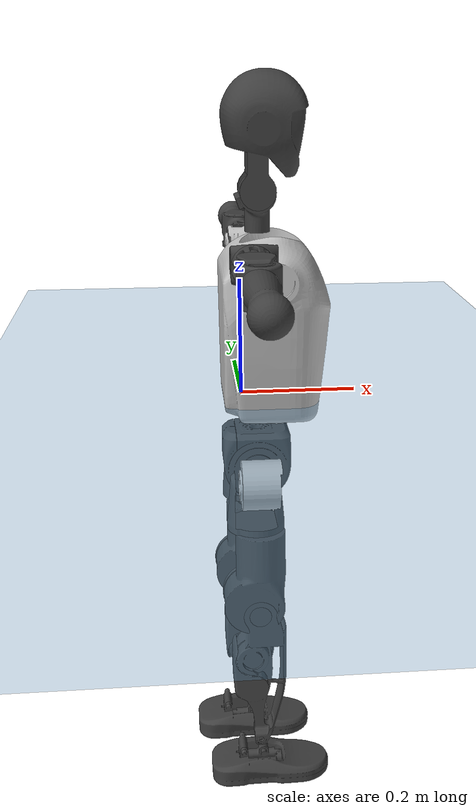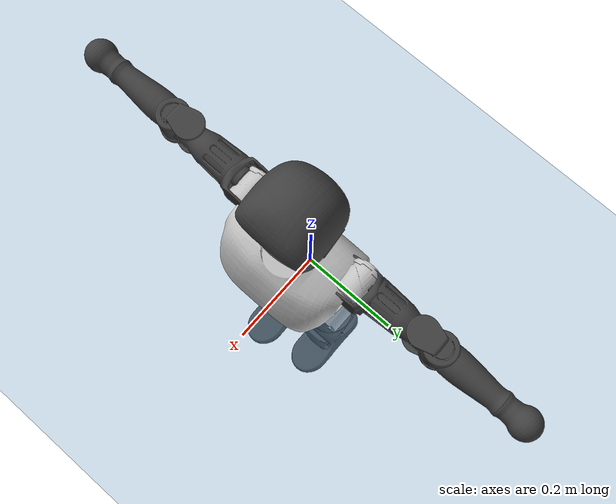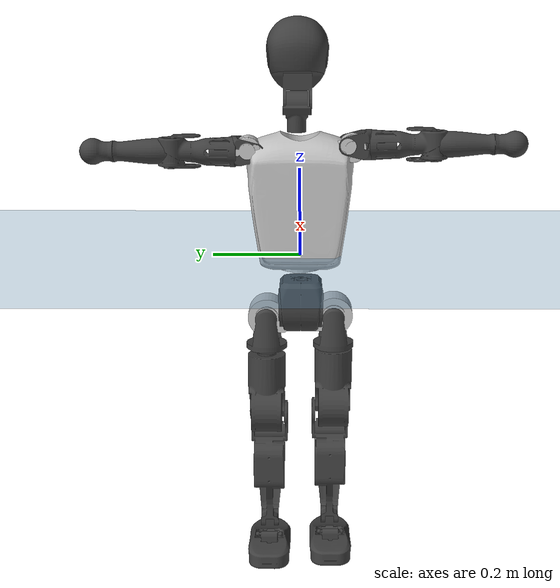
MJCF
<mujoco model="T1">
  <compiler angle="radian" assetdir="assets" balanceinertia="true" inertiafromgeom="false"/>

  <option timestep="0.005" density="1.2" viscosity="2e-05"/>

  <size nkey="1"/>

  <visual>
    <quality shadowsize="8192"/>
    <map shadowclip="0.5"/>
  </visual>

  <default>
    <default class="/">
      <joint armature="0.01" damping="0.01" frictionloss="0.1"/>
      <geom contype="0" conaffinity="0" group="1" solref="-1000 -80"/>
      <site size="0.01 0.005 0.005" group="5"/>
      <general forcelimited="true" biastype="affine" gainprm="25" biasprm="0 -25 -0.6"/>
      <default class="t1">
        <geom rgba="0.25 0.25 0.25 1"/>
        <default class="visual">
          <geom type="mesh" group="2"/>
        </default>
        <default class="collision">
          <geom group="3"/>
        </default>
        <default class="foot">
          <geom size="0.1115 0.05 0.015" type="box" condim="6" group="4" priority="1" solimp="0.015 1 0.015"/>
        </default>
        <default class="reward_collision_sphere">
          <geom group="5" rgba="1 0 0 1"/>
        </default>
      </default>
    </default>
  </default>

  <asset>
    <texture type="skybox" colorspace="auto" name="//unnamed_texture_0" builtin="gradient" rgb1="0.95 0.95 0.95" rgb2="0.95 0.95 0.95" width="100" height="600"/>
    <texture type="2d" colorspace="auto" name="texplane" builtin="checker" rgb1="0.345 0.575 0.748" rgb2="0.345 0.575 0.748" markrgb="1 1 1" width="512" height="512"/>
    <material name="MatPlane" class="/" texture="texplane" texuniform="true" texrepeat="2 2" specular="0.9"/>
    <mesh name="Trunk" class="/" file="Trunk.stl"/>
    <mesh name="H1" class="/" file="H1.stl"/>
    <mesh name="H2" class="/" file="H2.stl"/>
    <mesh name="AL1" class="/" file="AL1.stl"/>
    <mesh name="AL2" class="/" file="AL2.stl"/>
    <mesh name="AL3" class="/" file="AL3.stl"/>
    <mesh name="left_hand_link" class="/" file="left_hand_link.stl"/>
    <mesh name="AR1" class="/" file="AR1.stl"/>
    <mesh name="AR2" class="/" file="AR2.stl"/>
    <mesh name="AR3" class="/" file="AR3.stl"/>
    <mesh name="right_hand_link" class="/" file="right_hand_link.stl"/>
    <mesh name="Waist" class="/" file="Waist.stl"/>
    <mesh name="Hip_Pitch_Left" class="/" file="Hip_Pitch_Left.stl"/>
    <mesh name="Hip_Roll_Left" class="/" file="Hip_Roll_Left.stl"/>
    <mesh name="Hip_Yaw_Left" class="/" file="Hip_Yaw_Left.stl"/>
    <mesh name="Shank_Left" class="/" file="Shank_Left.stl"/>
    <mesh name="Ankle_Cross_Left" class="/" file="Ankle_Cross_Left.stl"/>
    <mesh name="left_foot_link" class="/" file="left_foot_link.stl"/>
    <mesh name="Hip_Pitch_Right" class="/" file="Hip_Pitch_Right.stl"/>
    <mesh name="Hip_Roll_Right" class="/" file="Hip_Roll_Right.stl"/>
    <mesh name="Hip_Yaw_Right" class="/" file="Hip_Yaw_Right.stl"/>
    <mesh name="Shank_Right" class="/" file="Shank_Right.stl"/>
    <mesh name="Ankle_Cross_Right" class="/" file="Ankle_Cross_Right.stl"/>
    <mesh name="right_foot_link" class="/" file="right_foot_link.stl"/>
  </asset>

  <worldbody>
    <geom name="floor" class="/" size="100 100 0.125" type="plane" group="0" material="MatPlane"/>
    <light name="toplight_shadow" class="/" pos="0 0 5" dir="0.0990148 0.0990148 -0.990148" type="directional" ambient="0.04 0.04 0.04" diffuse="0.55 0.55 0.55" specular="0.12 0.12 0.12"/>
    <light name="toplight_fill" class="/" pos="0 0 5" dir="0.0990148 0.0990148 -0.990148" type="directional" castshadow="false" ambient="0.04 0.04 0.04" diffuse="0.3 0.3 0.3" specular="0.08 0.08 0.08"/>
    <body name="trunk" childclass="t1" pos="-0.00344347 9.52587e-05 -0.00140902" quat="1 8.98772e-05 -0.000802102 -8.54818e-05">
      <inertial pos="0.0225256 -0.000807312 0.118898" quat="0.999961 0.000180202 -0.0087983 0.000427987" mass="4.65671" diaginertia="0.0011188 0.0171348 0.0917079"/>
      <joint name="//unnamed_joint_0" type="free" armature="0" damping="0" frictionloss="0"/>
      <geom name="//unnamed_geom_1" class="visual" rgba="0.76 0.76 0.76 1" mesh="Trunk"/>
      <geom name="//unnamed_geom_2" class="collision" size="0.0569319 0.0759092 0.113864" pos="0.0252832 0 0.133632" type="box"/>
      <geom name="//unnamed_geom_3" class="reward_collision_sphere" size="0.0872956" pos="0.0252832 0 0.11136"/>
      <geom name="//unnamed_geom_4" class="reward_collision_sphere" size="0.0113864" pos="0.0252832 0.063095 0"/>
      <geom name="//unnamed_geom_5" class="reward_collision_sphere" size="0.0113864" pos="0.0252832 -0.063095 0"/>
      <geom name="//unnamed_geom_6" class="reward_collision_sphere" size="0.0113864" pos="0.0252832 0.0794255 0.200447"/>
      <geom name="//unnamed_geom_7" class="reward_collision_sphere" size="0.0113864" pos="0.0252832 -0.0794255 0.200447"/>
      <site name="imu" pos="0.0375118 0.00465118 -0.0214871" size="0.00759092"/>
      <camera name="track" pos="0 -1.48459 0" quat="0.707107 0.707107 0 0" mode="trackcom"/>
      <camera name="ego_camera" pos="0.0514091 0 0.467711" quat="-0.5 -0.5 0.5 0.5"/>
      <body name="H1" pos="0.0352264 0.0078591 0.279465" quat="1 -0.000238336 8.04154e-05 0.000211922">
        <inertial pos="0.00231758 -0.00292383 0.0654378" quat="0.776021 -0.00728736 -0.0308379 0.629911" mass="0.178184" diaginertia="3.22345e-06 5.4563e-05 0.000248179"/>
        <joint name="AAHead_yaw" pos="0 0 0" axis="-0.0332013 -0.0128467 0.999366" range="-1.60589 1.57354" armature="0.00542804" damping="0.0039677" frictionloss="0.0674725"/>
        <geom name="//unnamed_geom_8" class="visual" mesh="H1"/>
        <body name="H2" pos="-0.000508461 -0.00175904 0.0683218" quat="0.999997 0.000286147 0.00112303 0.00235317">
          <inertial pos="0.00233987 0.00925919 0.108578" quat="0.989232 0.103233 -0.0746486 -0.0720505" mass="0.255795" diaginertia="2.70309e-05 0.000437114 0.00286047"/>
          <joint name="Head_pitch" pos="0 0 0" axis="-0.00115273 -0.999999 0.00104275" stiffness="0.0101763" range="-1.20778 0.339222" armature="0.00634767" damping="0.0020482" frictionloss="0.0737392"/>
          <geom name="//unnamed_geom_9" class="visual" mesh="H2"/>
          <geom name="//unnamed_geom_10" class="collision" size="0.0607274" pos="0.00421386 0 0.122496"/>
          <geom name="//unnamed_geom_11" class="reward_collision_sphere" size="0.0683183" pos="0.00842772 0 0.11136"/>
        </body>
      </body>
      <body name="AL1" pos="0.0238303 0.072024 0.241079" quat="1 1.77279e-05 0.000101793 -0.000130316">
        <inertial pos="0.00776754 0.0257673 0.00479082" quat="0.501851 0.49955 -0.504346 0.494196" mass="0.220743" diaginertia="1.70538e-05 0.000274889 0.000477794"/>
        <joint name="Left_Shoulder_Pitch" pos="0 0 0" axis="-0.0182716 0.999832 0.00118467" range="-3.33067 1.20892" armature="0.00654084" damping="0" frictionloss="0.0902413"/>
        <geom name="//unnamed_geom_12" class="visual" rgba="0.76 0.76 0.76 1" mesh="AL1"/>
        <body name="AL2" pos="0.00373274 0.0288969 -0.00349355" quat="1 -7.002e-05 0.000237389 -2.7549e-05">
          <inertial pos="0.00233291 0.0270627 -0.00205195" quat="0.487876 0.511412 -0.488371 0.51179" mass="0.0675766" diaginertia="4.54695e-06 6.32658e-05 0.000285435"/>
          <joint name="Left_Shoulder_Roll" pos="0 0 0" axis="-0.999992 -0.00386579 -0.00136696" range="-1.64303 1.86737" armature="0.00728035" damping="0" frictionloss="0.068013"/>
          <geom name="//unnamed_geom_13" class="visual" mesh="AL2"/>
          <body name="AL3" pos="-0.00747188 0.0437608 -0.00114821" quat="0.999999 6.35609e-05 0.00130291 0.000736564">
            <inertial pos="-1.69851e-05 0.0645165 -0.00534909" quat="0.714801 0.698962 -0.0135871 0.0181078" mass="0.440002" diaginertia="0.00016067 0.00288734 0.0010735"/>
            <joint name="Left_Elbow_Pitch" pos="0 0 0" axis="-0.0114209 -0.999934 -0.00156585" range="-2.31526 2.15633" armature="0.00989828" damping="0.010329" frictionloss="0.0699162"/>
            <geom name="//unnamed_geom_14" class="visual" mesh="AL3"/>
            <geom name="//unnamed_geom_15" class="collision" size="0.0227728 0.0569319" pos="0 0.0371147 0" quat="0.707105 0.707108 0 0" type="cylinder"/>
            <geom name="//unnamed_geom_16" class="reward_collision_sphere" size="0.0273273"/>
            <body name="left_hand_link" pos="-0.000139117 0.108668 0.00126926" quat="0.999997 -0.0019193 0.0012894 -0.000241148">
              <inertial pos="-0.00925191 0.0870807 -0.00129948" quat="0.707657 0.706555 0.0012027 -0.000518246" mass="0.145559" diaginertia="0.000102951 0.00178146 0.000389398"/>
              <joint name="Left_Elbow_Yaw" pos="0 0 0" axis="-0.016082 -0.00700841 0.999846" range="-2.48081 0.0570475" armature="0.00564298" damping="0" frictionloss="0.0568895"/>
              <geom name="//unnamed_geom_17" class="visual" mesh="left_hand_link"/>
              <geom name="//unnamed_geom_18" class="collision" size="0.0227728 0.0664206" pos="0 0.0964982 0" quat="0.707105 0.707108 0 0" type="cylinder"/>
              <geom name="//unnamed_geom_19" class="reward_collision_sphere" size="0.0379546"/>
              <geom name="//unnamed_geom_20" class="reward_collision_sphere" size="0.0265682" pos="0 0.0816523 0"/>
              <geom name="//unnamed_geom_21" class="reward_collision_sphere" size="0.0265682" pos="0 0.159593 0"/>
            </body>
          </body>
        </body>
      </body>
      <body name="AR1" pos="0.0217267 -0.0721778 0.245805" quat="0.999999 -0.00101125 0.000802548 -0.000430165">
        <inertial pos="-0.00195458 -0.0333295 -0.000808125" quat="0.504499 0.497049 -0.503069 0.495323" mass="0.225994" diaginertia="1.82107e-05 0.000290394 0.000490118"/>
        <joint name="Right_Shoulder_Pitch" pos="0 0 0" axis="-0.00334184 -0.999988 -0.00365754" range="-1.18282 3.31501" armature="0.00633717" damping="0.0424296" frictionloss="0.0855133"/>
        <geom name="//unnamed_geom_22" class="visual" rgba="0.76 0.76 0.76 1" mesh="AR1"/>
        <body name="AR2" pos="-0.00286271 -0.0358864 0.00696345" quat="1 0.000192108 -0.000248531 -0.000640211">
          <inertial pos="0.00405898 -0.0329851 0.00808155" quat="0.507735 0.497321 -0.50895 0.48564" mass="0.0679147" diaginertia="5.08852e-06 8.17549e-05 0.000285971"/>
          <joint name="Right_Shoulder_Roll" pos="0 0 0" axis="-0.999991 -0.00424792 -0.000348773" stiffness="0.0308411" range="-1.90826 1.53503" armature="0.0071925" damping="0" frictionloss="0.0685025"/>
          <geom name="//unnamed_geom_23" class="visual" mesh="AR2"/>
          <body name="AR3" pos="-0.00328071 -0.0482467 2.53221e-05" quat="0.999999 3.15637e-05 0.000188429 0.00107611">
            <inertial pos="0.00713588 -0.0636035 -0.000917892" quat="0.703259 0.710885 0.00096619 0.00826477" mass="0.444966" diaginertia="0.000167735 0.00290413 0.000962367"/>
            <joint name="Right_Elbow_Pitch" pos="0 0 0" axis="0.00920176 0.999956 0.00196533" stiffness="0.0253768" range="-2.26657 2.3346" armature="0.00732867" damping="0" frictionloss="0.103716"/>
            <geom name="//unnamed_geom_24" class="visual" mesh="AR3"/>
            <geom name="//unnamed_geom_25" class="collision" size="0.0227728 0.0569319" pos="0 -0.0371147 0" quat="0.707105 0.707108 0 0" type="cylinder"/>
            <geom name="//unnamed_geom_26" class="reward_collision_sphere" size="0.0273273"/>
            <body name="right_hand_link" pos="-0.00316124 -0.111739 0.00115922" quat="0.999999 -2.62421e-05 0.000279882 0.0010609">
              <inertial pos="0.00150168 -0.0828973 -0.00529487" quat="0.706262 0.70795 0.000128132 0.000105633" mass="0.137426" diaginertia="0.000107435 0.00193279 0.000364521"/>
              <joint name="Right_Elbow_Yaw" pos="0 0 0" axis="0.00108565 0.00309513 0.999995" range="-0.0559691 2.44194" armature="0.00771081" damping="0.00700799" frictionloss="0.101566"/>
              <geom name="//unnamed_geom_27" class="visual" mesh="right_hand_link"/>
              <geom name="//unnamed_geom_28" class="collision" size="0.0227728 0.0664206" pos="0 -0.0964982 0" quat="0.707105 0.707108 0 0" type="cylinder"/>
              <geom name="//unnamed_geom_29" class="reward_collision_sphere" size="0.0379546"/>
              <geom name="//unnamed_geom_30" class="reward_collision_sphere" size="0.0265682" pos="0 -0.0816523 0"/>
              <geom name="//unnamed_geom_31" class="reward_collision_sphere" size="0.0265682" pos="0 -0.159593 0"/>
            </body>
          </body>
        </body>
      </body>
      <body name="Waist" pos="0.028722 -0.00163741 -0.127745" quat="1 -0.000602757 -7.79444e-05 0.000160253">
        <inertial pos="0.00172506 -0.00199384 0.00646257" quat="0.983217 -0.0112312 -0.182094 5.72851e-05" mass="1.19489" diaginertia="6.39253e-05 0.00122278 0.00726844"/>
        <joint name="Waist" pos="0 0 0" axis="0.00771415 0.023504 0.999694" range="-1.51448 1.6231" armature="0.0078632" damping="0.00268191" frictionloss="0.101281"/>
        <geom name="//unnamed_geom_32" class="visual" mesh="Waist"/>
        <body name="Hip_Pitch_Left" pos="0.00168501 0.0792845 -0.000304927" quat="0.999999 0.00114962 0.000347344 0.000561633">
          <inertial pos="-0.000956505 -0.000317303 -0.0205401" quat="0.975851 0.217392 0.0212384 -0.00215486" mass="0.433854" diaginertia="2.41524e-05 0.000299844 0.0019039"/>
          <joint name="Left_Hip_Pitch" pos="0 0 0" axis="-0.00312424 0.999966 -0.00756912" range="-1.80203 1.55942" armature="0.00634341" damping="0" frictionloss="0.0777856"/>
          <geom name="//unnamed_geom_33" class="visual" rgba="0.76 0.76 0.76 1" mesh="Hip_Pitch_Left"/>
          <body name="Hip_Roll_Left" pos="-0.00694965 0.00137846 -0.0206469" quat="0.999995 -0.000576494 -0.00301836 -0.000518568">
            <inertial pos="-0.00298404 0.00198528 -0.0597526" quat="0.706195 -0.00821293 -0.0150529 0.707809" mass="0.197352" diaginertia="2.82403e-05 0.000374137 0.000991754"/>
            <joint name="Left_Hip_Roll" pos="0 0 0" axis="-0.999578 0.0178059 0.0229404" range="-1.71965 0.152661" armature="0.00851337" damping="0.0178253" frictionloss="0.0785702"/>
            <geom name="//unnamed_geom_34" class="visual" mesh="Hip_Roll_Left"/>
            <geom name="//unnamed_geom_35" class="reward_collision_sphere" size="0.0417501"/>
            <body name="Hip_Yaw_Left" pos="-0.0022264 -7.75792e-07 -0.0936468" quat="0.999995 0.00259491 -0.000146778 -0.00188712">
              <inertial pos="0.00474789 -0.00131591 -0.0996201" quat="0.695696 -0.0381264 -0.0332688 0.716552" mass="0.90542" diaginertia="0.000303427 0.00570239 0.00445846"/>
              <joint name="Left_Hip_Yaw" pos="0 0 0" axis="-0.00256425 -0.00148264 -0.999996" stiffness="0.0336562" range="-1.16698 0.880268" armature="0.00765562" damping="0.0145371" frictionloss="0.0554016"/>
              <geom name="//unnamed_geom_36" class="visual" mesh="Hip_Yaw_Left"/>
              <geom name="//unnamed_geom_37" class="collision" size="0.0379546 0.0607274" type="cylinder"/>
              <body name="Shank_Left" pos="-0.00396562 -0.00680141 -0.149071" quat="1 -4.91446e-06 5.39913e-05 4.25506e-05">
                <inertial pos="0.00573042 0.000750414 -0.138231" quat="0.999503 0.00938817 -0.00448307 0.0297427" mass="0.800196" diaginertia="0.000470004 0.00704999 0.00310273"/>
                <joint name="Left_Knee_Pitch" pos="0 0 0" axis="-0.0177442 0.999591 0.022428" range="0.0235469 2.24671" armature="0.00912255" damping="0.013107" frictionloss="0.0470967"/>
                <geom name="//unnamed_geom_38" class="visual" mesh="Shank_Left"/>
                <geom name="//unnamed_geom_39" class="collision" size="0.0379546 0.0569319" pos="0 0 -0.133632" type="cylinder"/>
                <geom name="//unnamed_geom_40" class="reward_collision_sphere" size="0.049341"/>
                <body name="Ankle_Cross_Left" pos="0.00104134 -0.00208629 -0.312901" quat="1 -0.000338995 0.000432706 -0.000623627">
                  <inertial pos="-0.000796769 0.00130974 -0.0110441" quat="0.445607 0.547168 0.558021 0.436641" mass="0.0311481" diaginertia="3.68084e-07 5.60391e-06 1.92233e-05"/>
                  <joint name="Left_Ankle_Pitch" pos="0 0 0" axis="0.0150977 0.999752 -0.0163838" range="-0.87394 0.422258" armature="0.00438902" damping="0" frictionloss="0.0807247"/>
                  <geom name="//unnamed_geom_41" class="visual" mesh="Ankle_Cross_Left"/>
                  <body name="left_foot_link" pos="-0.00837792 0.00198197 -0.0123009" quat="1 -0.000185673 -8.19743e-05 0.000396442">
                    <inertial pos="0.00736832 -0.00344048 -0.010362" quat="0.00217655 0.627469 0.00391376 0.778629" mass="0.301631" diaginertia="3.59461e-05 0.000558686 0.00412537"/>
                    <joint name="Left_Ankle_Roll" pos="0 0 0" axis="-0.999948 -0.00806209 0.00626428" stiffness="0.00426118" range="-0.493722 0.473739" armature="0.00724627" damping="0.0498192" frictionloss="0.0686239"/>
                    <geom name="//unnamed_geom_42" class="visual" mesh="left_foot_link"/>
                    <geom name="left_foot" class="foot" size="0.0929072 0.0474865 0.0123841" pos="0.00421386 0 -0.016704"/>
                    <geom name="//unnamed_geom_44" class="reward_collision_sphere" size="0.0394728" pos="0.00421386 0 -0.016704"/>
                    <geom name="//unnamed_geom_45" class="reward_collision_sphere" size="0.0227728" pos="0.0400317 -0.0170728 -0.016704"/>
                    <geom name="//unnamed_geom_46" class="reward_collision_sphere" size="0.0227728" pos="-0.029497 -0.0170728 -0.016704"/>
                    <site name="left_foot" class="foot" pos="0.00421386 0 -0.016704" size="0.00759092"/>
                  </body>
                </body>
              </body>
            </body>
          </body>
        </body>
        <body name="Hip_Pitch_Right" pos="0.00268819 -0.0767218 0.00338535" quat="1 -0.000503953 -0.000554932 0.000293612">
          <inertial pos="-0.001664 0.00597592 -0.0141165" quat="0.973635 -0.22747 0.0167388 -0.00346629" mass="0.457926" diaginertia="2.63313e-05 0.000300686 0.00210031"/>
          <joint name="Right_Hip_Pitch" pos="0 0 0" axis="0.00149115 -0.999982 -0.00580962" stiffness="0.00451197" range="-1.38515 1.64224" armature="0.00874563" damping="0" frictionloss="0.103506"/>
          <geom name="//unnamed_geom_47" class="visual" rgba="0.76 0.76 0.76 1" mesh="Hip_Pitch_Right"/>
          <body name="Hip_Roll_Right" pos="-0.00760041 0.000583282 -0.0220703" quat="0.999998 0.000544875 -0.00142422 0.000906103">
            <inertial pos="0.000226076 0.00478571 -0.0648812" quat="0.705998 -0.0067301 -0.00473221 0.708166" mass="0.178785" diaginertia="2.46767e-05 0.0003672 0.000857726"/>
            <joint name="Right_Hip_Roll" pos="0 0 0" axis="-0.999336 0.000468197 -0.0364267" range="-0.19232 1.54416" armature="0.0089241" damping="0.00300208" frictionloss="0.0815158"/>
            <geom name="//unnamed_geom_48" class="visual" mesh="Hip_Roll_Right"/>
            <geom name="//unnamed_geom_49" class="reward_collision_sphere" size="0.0417501"/>
            <body name="Hip_Yaw_Right" pos="0.00505866 -0.000642031 -0.085894" quat="1 0.000310169 -0.000438877 0.000277437">
              <inertial pos="-0.00488677 -0.00690494 -0.0965628" quat="0.708286 -0.0731869 -0.0474741 0.700515" mass="0.945658" diaginertia="0.00033619 0.00572277 0.00438123"/>
              <joint name="Right_Hip_Yaw" pos="0 0 0" axis="-0.00774049 -4.45237e-05 -0.99997" stiffness="0.00470562" range="-1.01266 1.01626" armature="0.00681154" damping="0" frictionloss="0.0764233"/>
              <geom name="//unnamed_geom_50" class="visual" mesh="Hip_Yaw_Right"/>
              <geom name="//unnamed_geom_51" class="collision" size="0.0379546 0.0607274" type="cylinder"/>
              <body name="Shank_Right" pos="-0.00433709 0.00748897 -0.15428" quat="1 -0.000211587 0.00024282 -0.00036814">
                <inertial pos="0.00544923 -0.00920505 -0.135185" quat="0.999921 -0.000348056 -0.00775048 -0.0098747" mass="0.745736" diaginertia="0.000510932 0.00847489 0.00350641"/>
                <joint name="Right_Knee_Pitch" pos="0 0 0" axis="-0.00504738 -0.999987 -2.68004e-05" range="-2.29808 0.0250381" armature="0.00739165" damping="0.012758" frictionloss="0.0807852"/>
                <geom name="//unnamed_geom_52" class="visual" mesh="Shank_Right"/>
                <geom name="//unnamed_geom_53" class="collision" size="0.0379546 0.0569319" pos="0 0 -0.133632" type="cylinder"/>
                <geom name="//unnamed_geom_54" class="reward_collision_sphere" size="0.049341"/>
                <body name="Ankle_Cross_Right" pos="0.00463941 -0.000274754 -0.313129" quat="0.999999 8.50924e-05 -0.000979433 0.000544469">
                  <inertial pos="-0.0021531 0.00579985 -0.00831791" quat="0.421314 0.573194 0.533855 0.457102" mass="0.0311077" diaginertia="3.78216e-07 6.90192e-06 2.04824e-05"/>
                  <joint name="Right_Ankle_Pitch" pos="0 0 0" axis="-0.00644082 -0.999773 0.020325" range="-0.384431 0.86594" armature="0.00592937" damping="0.0394028" frictionloss="0.0691522"/>
                  <geom name="//unnamed_geom_55" class="visual" mesh="Ankle_Cross_Right"/>
                  <body name="right_foot_link" pos="0.00282185 -0.00145597 -0.0200081" quat="1 -2.14568e-05 6.30203e-05 -9.3701e-06">
                    <inertial pos="-0.00101599 -0.000438136 -0.0165578" quat="0.0138503 0.620895 -0.00287101 0.783766" mass="0.293851" diaginertia="3.30683e-05 0.000536743 0.00364272"/>
                    <joint name="Right_Ankle_Roll" pos="0 0 0" axis="-0.999953 -0.000323092 0.00974013" range="-0.47483 0.502344" armature="0.00728041" damping="0" frictionloss="0.0892771"/>
                    <geom name="//unnamed_geom_56" class="visual" mesh="right_foot_link"/>
                    <geom name="right_foot" class="foot" size="0.0943349 0.0415011 0.0112823" pos="0.00421386 0 -0.016704"/>
                    <geom name="//unnamed_geom_58" class="reward_collision_sphere" size="0.0303637"/>
                    <geom name="//unnamed_geom_59" class="reward_collision_sphere" size="0.0227728" pos="0.00421386 0 -0.016704"/>
                    <geom name="//unnamed_geom_60" class="reward_collision_sphere" size="0.0227728" pos="0.0400317 0.0170728 -0.016704"/>
                    <geom name="//unnamed_geom_61" class="reward_collision_sphere" size="0.0227728" pos="-0.029497 0.0170728 -0.016704"/>
                    <site name="right_foot" class="foot" pos="0.00421386 0 -0.016704" size="0.00759092"/>
                  </body>
                </body>
              </body>
            </body>
          </body>
        </body>
      </body>
    </body>
  </worldbody>

  <contact>
    <pair class="/" geom1="floor" geom2="left_foot" name="//unnamed_contact_0"/>
    <pair class="/" geom1="floor" geom2="right_foot" name="//unnamed_contact_1"/>
  </contact>

  <actuator>
    <general name="AAHead_yaw" class="/" joint="AAHead_yaw" forcerange="-4.54913 4.54913" gainprm="18.7799" biasprm="0 -18.7799 -0.51373"/>
    <general name="Head_pitch" class="/" joint="Head_pitch" forcerange="-5.60708 5.60708" gainprm="18.7799" biasprm="0 -18.7799 -0.51373"/>
    <general name="Left_Shoulder_Pitch" class="/" joint="Left_Shoulder_Pitch" forcerange="-14.7875 14.7875" gainprm="18.7799" biasprm="0 -18.7799 -0.51373"/>
    <general name="Left_Shoulder_Roll" class="/" joint="Left_Shoulder_Roll" forcerange="-12.5635 12.5635" gainprm="18.7799" biasprm="0 -18.7799 -0.51373"/>
    <general name="Left_Elbow_Pitch" class="/" joint="Left_Elbow_Pitch" forcerange="-11.4494 11.4494" gainprm="18.7799" biasprm="0 -18.7799 -0.51373"/>
    <general name="Left_Elbow_Yaw" class="/" joint="Left_Elbow_Yaw" forcerange="-12.4952 12.4952" gainprm="18.7799" biasprm="0 -18.7799 -0.51373"/>
    <general name="Right_Shoulder_Pitch" class="/" joint="Right_Shoulder_Pitch" forcerange="-14.268 14.268" gainprm="18.7799" biasprm="0 -18.7799 -0.51373"/>
    <general name="Right_Shoulder_Roll" class="/" joint="Right_Shoulder_Roll" forcerange="-13.1638 13.1638" gainprm="18.7799" biasprm="0 -18.7799 -0.51373"/>
    <general name="Right_Elbow_Pitch" class="/" joint="Right_Elbow_Pitch" forcerange="-13.3606 13.3606" gainprm="18.7799" biasprm="0 -18.7799 -0.51373"/>
    <general name="Right_Elbow_Yaw" class="/" joint="Right_Elbow_Yaw" forcerange="-14.1253 14.1253" gainprm="18.7799" biasprm="0 -18.7799 -0.51373"/>
    <general name="Waist" class="/" joint="Waist" forcerange="-21.6468 21.6468" gainprm="18.7799" biasprm="0 -18.7799 -0.51373"/>
    <general name="Left_Hip_Pitch" class="/" joint="Left_Hip_Pitch" forcerange="-33.953 33.953" gainprm="18.7799" biasprm="0 -18.7799 -0.51373"/>
    <general name="Left_Hip_Roll" class="/" joint="Left_Hip_Roll" forcerange="-24.1591 24.1591" gainprm="18.7799" biasprm="0 -18.7799 -0.51373"/>
    <general name="Left_Hip_Yaw" class="/" joint="Left_Hip_Yaw" forcerange="-26.6165 26.6165" gainprm="18.7799" biasprm="0 -18.7799 -0.51373"/>
    <general name="Left_Knee_Pitch" class="/" joint="Left_Knee_Pitch" forcerange="-42.6927 42.6927" gainprm="18.7799" biasprm="0 -18.7799 -0.51373"/>
    <general name="Left_Ankle_Pitch" class="/" joint="Left_Ankle_Pitch" forcerange="-16.2708 16.2708" gainprm="18.7799" biasprm="0 -18.7799 -0.51373"/>
    <general name="Left_Ankle_Roll" class="/" joint="Left_Ankle_Roll" forcerange="-10.5455 10.5455" gainprm="18.7799" biasprm="0 -18.7799 -0.51373"/>
    <general name="Right_Hip_Pitch" class="/" joint="Right_Hip_Pitch" forcerange="-31.5599 31.5599" gainprm="18.7799" biasprm="0 -18.7799 -0.51373"/>
    <general name="Right_Hip_Roll" class="/" joint="Right_Hip_Roll" forcerange="-21.2659 21.2659" gainprm="18.7799" biasprm="0 -18.7799 -0.51373"/>
    <general name="Right_Hip_Yaw" class="/" joint="Right_Hip_Yaw" forcerange="-22.7754 22.7754" gainprm="18.7799" biasprm="0 -18.7799 -0.51373"/>
    <general name="Right_Knee_Pitch" class="/" joint="Right_Knee_Pitch" forcerange="-53.6408 53.6408" gainprm="18.7799" biasprm="0 -18.7799 -0.51373"/>
    <general name="Right_Ankle_Pitch" class="/" joint="Right_Ankle_Pitch" forcerange="-18.7423 18.7423" gainprm="18.7799" biasprm="0 -18.7799 -0.51373"/>
    <general name="Right_Ankle_Roll" class="/" joint="Right_Ankle_Roll" forcerange="-11.4422 11.4422" gainprm="18.7799" biasprm="0 -18.7799 -0.51373"/>
  </actuator>

  <sensor>
    <gyro site="imu" name="imu_angular_velocity"/>
    <velocimeter site="imu" name="imu_linear_velocity"/>
    <framelinvel objtype="site" objname="left_foot" name="left_foot_global_linear_velocity"/>
    <framelinvel objtype="site" objname="right_foot" name="right_foot_global_linear_velocity"/>
  </sensor>

  <keyframe>
    <key name="home" qpos="0 0 0.6385 1 0 0 0 0 0 0 1.4 0 -0.4 0 -1.4 0 0.4 0 -0.4 0 0 0.8 -0.4 0 0.4 0 0 -0.8 0.4 0"/>
  </keyframe>
</mujoco>
